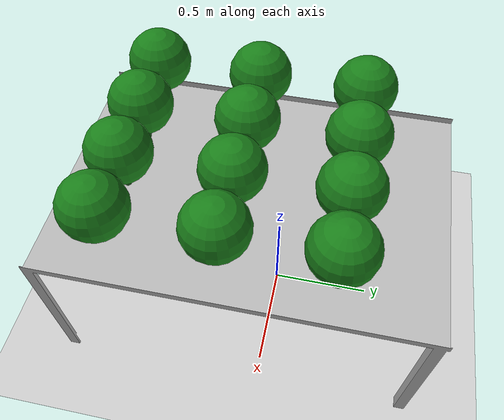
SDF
<?xml version="1.0"?>
<sdf version="1.9">
  <world name="greenhouse_bench_world">

    <!-- Core systems -->
    <plugin filename="gz-sim-physics-system" name="gz::sim::systems::Physics"/>
    <plugin filename="gz-sim-user-commands-system" name="gz::sim::systems::UserCommands"/>
    <plugin filename="gz-sim-scene-broadcaster-system" name="gz::sim::systems::SceneBroadcaster"/>

    <gravity>0 0 -9.81</gravity>

    <light type="directional" name="sun">
      <cast_shadows>true</cast_shadows>
      <pose>0 0 10 0 0 0</pose>
      <diffuse>0.9 0.9 0.9 1</diffuse>
      <specular>0.2 0.2 0.2 1</specular>
      <attenuation>
        <range>1000</range>
        <constant>0.9</constant>
        <linear>0.01</linear>
        <quadratic>0.001</quadratic>
      </attenuation>
      <direction>-0.3 0.1 -1</direction>
    </light>

    <!-- Ground -->
    <model name="ground_plane">
      <static>true</static>
      <link name="link">
        <collision name="collision">
          <geometry>
            <plane>
              <normal>0 0 1</normal>
              <size>30 30</size>
            </plane>
          </geometry>
        </collision>
        <visual name="visual">
          <geometry>
            <plane>
              <normal>0 0 1</normal>
              <size>30 30</size>
            </plane>
          </geometry>
          <material>
    <ambient>0.8 0.8 0.8 1</ambient>
    <diffuse>0.8 0.8 0.8 1</diffuse>
    <specular>0.1 0.1 0.1 1</specular>
  </material>
        </visual>
      </link>
    </model>

    <model name="bench_with_plants">
      <static>true</static>
      <pose>0 -1 0.7865 0 0 0</pose>

      <!-- Bench -->
      <include>
        <uri>model://bench</uri>
        <name>bench_1</name>
        <pose>0 0 0 0 0 0</pose>
      </include>

      <model name="plant_rows">
        <static>true</static>

        <!-- THIS controls the whole row -->
        <pose>-0.2 0 0 0 0 0</pose>

        <!-- Row 1 -->
        <include>
          <uri>model://tomato_plant_simple</uri>
          <name>tomato_r1_p1</name>
          <pose>0 0.8 0.0135 0 0 0</pose>
        </include>
        <include>
          <uri>model://tomato_plant_simple</uri>
          <name>tomato_r1_p2</name>
          <pose>0.3 0.8 0.0135 0 0 0</pose>
        </include>
        <include>
          <uri>model://tomato_plant_simple</uri>
          <name>tomato_r1_p3</name>
          <pose>0.6 0.8 0.0135 0 0 0</pose>
        </include>
        <include>
          <uri>model://tomato_plant_simple</uri>
          <name>tomato_r1_p4</name>
          <pose>-0.3 0.8 0.0135 0 0 0</pose>
        </include>

        <!-- Row 2 -->
        <include>
          <uri>model://tomato_plant_simple</uri>
          <name>tomato_r2_p1</name>
          <pose>0 0.3 0.0135 0 0 0</pose>
        </include>
        <include>
          <uri>model://tomato_plant_simple</uri>
          <name>tomato_r2_p2</name>
          <pose>0.3 0.3 0.0135 0 0 0</pose>
        </include>
        <include>
          <uri>model://tomato_plant_simple</uri>
          <name>tomato_r2_p3</name>
          <pose>0.6 0.3 0.0135 0 0 0</pose>
        </include>
        <include>
          <uri>model://tomato_plant_simple</uri>
          <name>tomato_r2_p4</name>
          <pose>-0.3 0.3 0.0135 0 0 0</pose>
        </include>

        <!-- Row 3 -->
        <include>
          <uri>model://tomato_plant_simple</uri>
          <name>tomato_r3_p1</name>
          <pose>0 1.3 0.0135 0 0 0</pose>
        </include>
        <include>
          <uri>model://tomato_plant_simple</uri>
          <name>tomato_r3_p2</name>
          <pose>0.3 1.3 0.0135 0 0 0</pose>
        </include>
        <include>
          <uri>model://tomato_plant_simple</uri>
          <name>tomato_r3_p3</name>
          <pose>0.6 1.3 0.0135 0 0 0</pose>
        </include>
        <include>
          <uri>model://tomato_plant_simple</uri>
          <name>tomato_r3_p4</name>
          <pose>-0.3 1.3 0.0135 0 0 0</pose>
        </include>
      </model>

    </model>

  </world>
</sdf>

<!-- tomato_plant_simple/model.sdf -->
<sdf version="1.9">
  <model name="tomato_plant_refined">
    <static>true</static>
    <link name="plant_link">

      <visual name="stem_visual">
        <pose>0 0 0.15 0 0 0</pose>
        <geometry>
          <cylinder>
            <radius>0.015</radius> <length>0.3</length>
          </cylinder>
        </geometry>
        <material>
          <ambient>0.13 0.37 0.13 1</ambient>
          <diffuse>0.13 0.37 0.13 1</diffuse>
        </material>
      </visual>

      <visual name="canopy_visual">
        <pose>0 0 0.225 0 0 0</pose>
        <geometry>
          <sphere>
            <radius>0.15</radius> </sphere>
        </geometry>
        <scale>1 1 1.5</scale>
        <material>
          <ambient>0.05 0.4 0.05 1</ambient>
          <diffuse>0.1 0.5 0.1 1</diffuse>
        </material>
      </visual>

      <visual name="fruit_1">
        <pose>0.1 0.05 0.25 0 0 0</pose>
        <geometry><sphere><radius>0.025</radius></sphere></geometry>
        <material>
          <ambient>0.8 0 0 1</ambient>
          <diffuse>0.8 0 0 1</diffuse>
        </material>
      </visual>

      <collision name="plant_collision">
        <pose>0 0 0.225 0 0 0</pose>
        <geometry>
          <cylinder>
            <radius>0.15</radius>
            <length>0.45</length>
          </cylinder>
        </geometry>
      </collision>

    </link>
  </model>
</sdf>

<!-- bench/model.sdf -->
<sdf version="1.9">
  <model name="bench">
    <static>true</static>

    <link name="bench_link">
      <visual name="bench_visual">
        <geometry>
          <mesh>
            <uri>model://bench/greenhouse_bench.stl</uri>
            <scale>0.001 0.001 0.001</scale>
          </mesh>
        </geometry>
      </visual>

      <collision name="bench_collision">
        <pose>0 1 0 0 0 0</pose>
        <geometry>
          <box>
            <size>1.2192 2 0.05</size>
          </box>
        </geometry>
      </collision>

    </link>
  </model>
</sdf>
